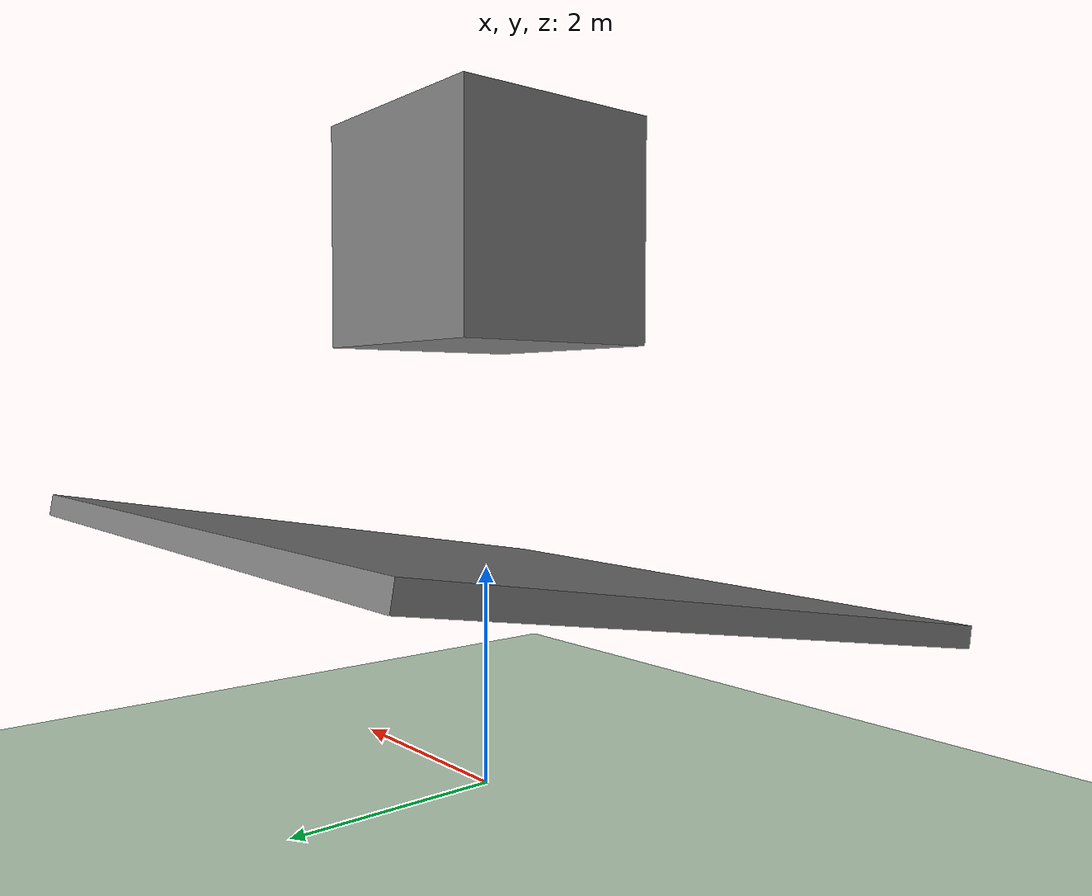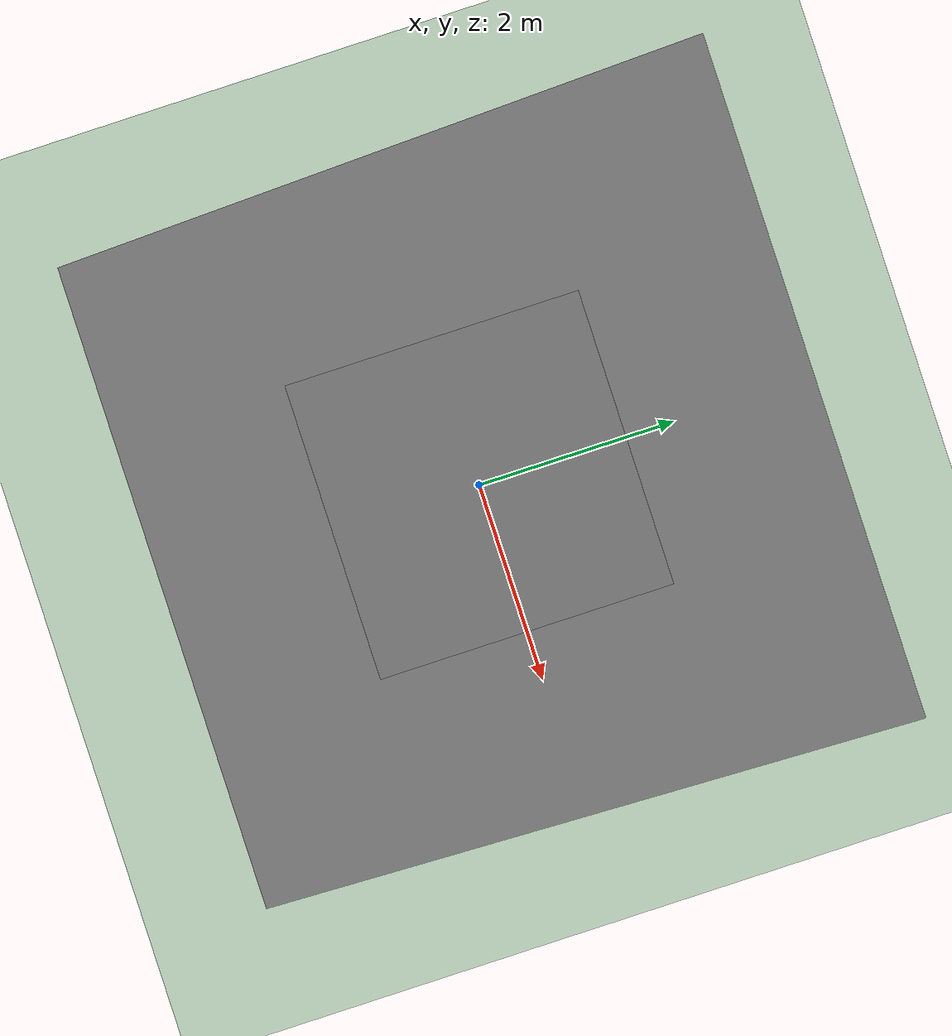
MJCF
<mujoco>
    <compiler angle="degree" coordinate="local" inertiafromgeom="true" />
    <option integrator="RK4" timestep="0.0001" />

    <worldbody>
         <light pos="0 -0.5 4"/>
                 <geom conaffinity="1" condim="3" name="floor" friction="0.0 0.0 0.0" pos="0 0 0" rgba="0.8 0.9 0.8 1" size="40 40 40" type="plane"/>
            <body name="disk" pos="0 0 5">
                <geom name="diii" type="box" size="1 1 1"/>
                <joint name='slider_x' type='slide' pos='0 0 0' axis='1 0 0'/>
                <joint name='slider_y' type='slide' pos='0 0 0' axis='0 1 0'/>
                <joint name='slider_z' type='slide' pos='0 0 0' axis='0 0 1'/>
                <joint name="wheel_joint1" type="hinge" axis="0 1 0" limited="false" damping="0" />
                <joint name="wheel_joint2" type="hinge" axis="1 0 0" limited="false" damping="0" />
                <joint name="wheel_joint3" type="hinge" axis="0 0 1" limited="false" damping="0" />
                <site type="box" size = "0.12 0.12 0.4" rgba=".5 1 .5 1"/>
            </body>
            <body name="saka1" pos="0 0 2">
                <geom name="saka" type="box"  size="3 3 0.1" euler="10 0 0" />
                </body>
    </worldbody>

    <contact>
                <pair name="masatu" geom1="diii" geom2="saka" friction="0.54 1 "/>
            </contact>

</mujoco>
